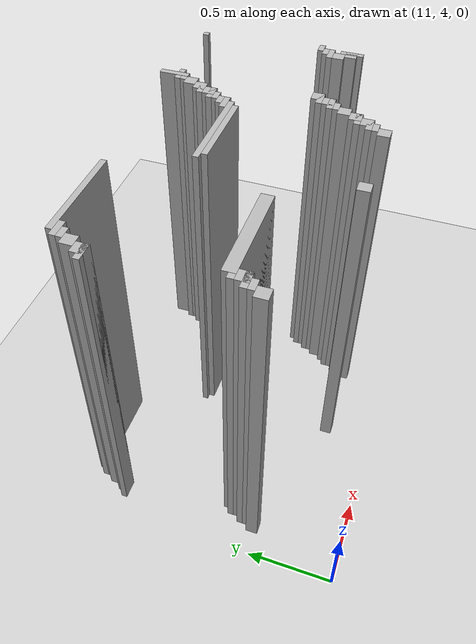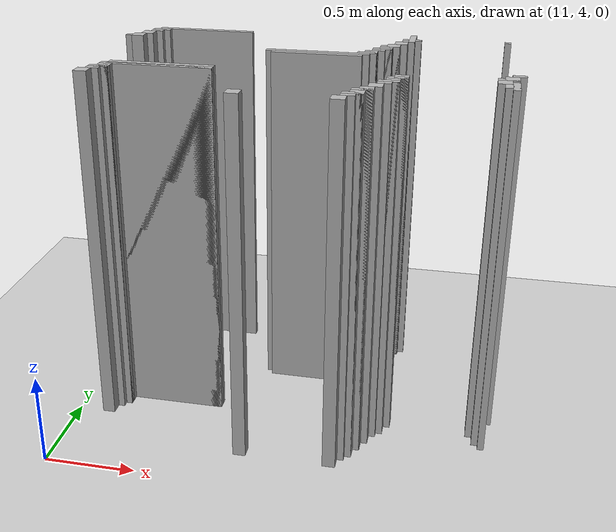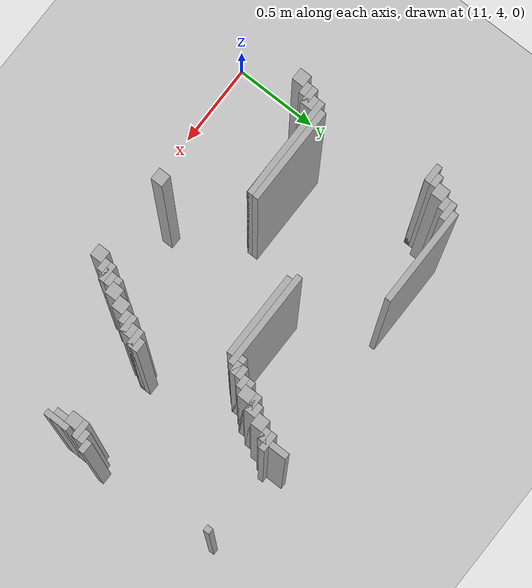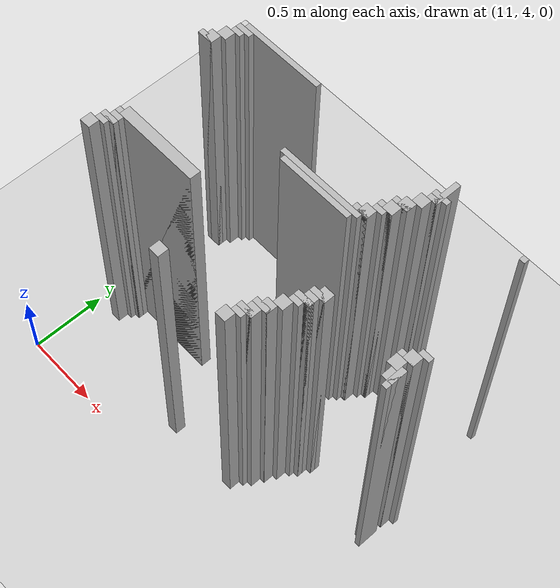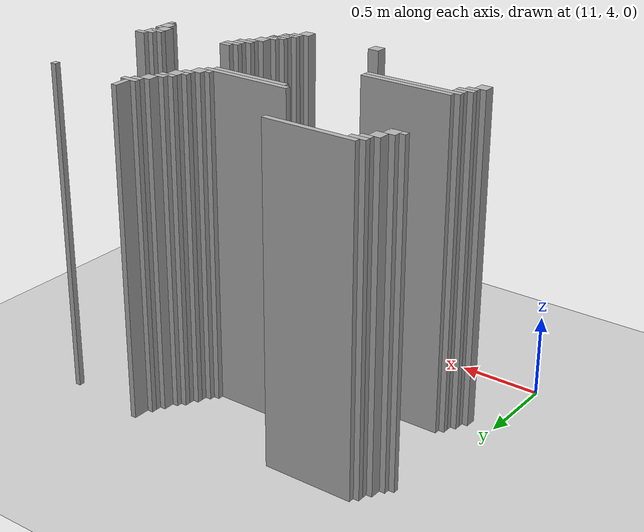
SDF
<sdf version="1.6">
 <world name="slam_world">
  <model name="ground_plane">
   <static>true</static>
   <link name="link">
    <collision name="collision">
     <geometry><plane><normal>0 0 1</normal><size>100 100</size></plane></geometry>
    </collision>
    <visual name="visual">
     <geometry><plane><normal>0 0 1</normal><size>100 100</size></plane></geometry>
     <material>
      <ambient>0.8 0.8 0.8 1</ambient>
      <diffuse>0.8 0.8 0.8 1</diffuse>
      <specular>0.8 0.8 0.8 1</specular>
     </material>
    </visual>
   </link>
  </model>
  <model name="wall_3851">
   <static>true</static>
   <pose>12.720417633410673 5.551044083526682 1.0 0 0 0</pose>
   <link name="link">
    <collision name="collision">
     <geometry><box><size>0.03480278422273782 0.17401392111368907 2.0</size></box></geometry>
    </collision>
    <visual name="visual">
     <geometry><box><size>0.03480278422273782 0.17401392111368907 2.0</size></box></geometry>
     <material><ambient>0.5 0.5 0.5 1</ambient><diffuse>0.7 0.7 0.7 1</diffuse></material>
    </visual>
   </link>
  </model>
  <model name="wall_3876">
   <static>true</static>
   <pose>11.519721577726218 5.551044083526682 1.0 0 0 0</pose>
   <link name="link">
    <collision name="collision">
     <geometry><box><size>0.5568445475638051 0.03480278422273782 2.0</size></box></geometry>
    </collision>
    <visual name="visual">
     <geometry><box><size>0.5568445475638051 0.03480278422273782 2.0</size></box></geometry>
     <material><ambient>0.5 0.5 0.5 1</ambient><diffuse>0.7 0.7 0.7 1</diffuse></material>
    </visual>
   </link>
  </model>
  <model name="wall_3877">
   <static>true</static>
   <pose>13.24245939675174 5.551044083526682 1.0 0 0 0</pose>
   <link name="link">
    <collision name="collision">
     <geometry><box><size>0.03480278422273782 0.03480278422273782 2.0</size></box></geometry>
    </collision>
    <visual name="visual">
     <geometry><box><size>0.03480278422273782 0.03480278422273782 2.0</size></box></geometry>
     <material><ambient>0.5 0.5 0.5 1</ambient><diffuse>0.7 0.7 0.7 1</diffuse></material>
    </visual>
   </link>
  </model>
  <model name="wall_3890">
   <static>true</static>
   <pose>11.258700696055683 5.516241299303944 1.0 0 0 0</pose>
   <link name="link">
    <collision name="collision">
     <geometry><box><size>0.10440835266821345 0.03480278422273782 2.0</size></box></geometry>
    </collision>
    <visual name="visual">
     <geometry><box><size>0.10440835266821345 0.03480278422273782 2.0</size></box></geometry>
     <material><ambient>0.5 0.5 0.5 1</ambient><diffuse>0.7 0.7 0.7 1</diffuse></material>
    </visual>
   </link>
  </model>
  <model name="wall_3891">
   <static>true</static>
   <pose>12.720417633410673 5.516241299303944 1.0 0 0 0</pose>
   <link name="link">
    <collision name="collision">
     <geometry><box><size>0.10440835266821345 0.03480278422273782 2.0</size></box></geometry>
    </collision>
    <visual name="visual">
     <geometry><box><size>0.10440835266821345 0.03480278422273782 2.0</size></box></geometry>
     <material><ambient>0.5 0.5 0.5 1</ambient><diffuse>0.7 0.7 0.7 1</diffuse></material>
    </visual>
   </link>
  </model>
  <model name="wall_3903">
   <static>true</static>
   <pose>11.241299303944315 5.481438515081206 1.0 0 0 0</pose>
   <link name="link">
    <collision name="collision">
     <geometry><box><size>0.06960556844547564 0.03480278422273782 2.0</size></box></geometry>
    </collision>
    <visual name="visual">
     <geometry><box><size>0.06960556844547564 0.03480278422273782 2.0</size></box></geometry>
     <material><ambient>0.5 0.5 0.5 1</ambient><diffuse>0.7 0.7 0.7 1</diffuse></material>
    </visual>
   </link>
  </model>
  <model name="wall_3904">
   <static>true</static>
   <pose>12.703016241299304 5.481438515081206 1.0 0 0 0</pose>
   <link name="link">
    <collision name="collision">
     <geometry><box><size>0.06960556844547564 0.03480278422273782 2.0</size></box></geometry>
    </collision>
    <visual name="visual">
     <geometry><box><size>0.06960556844547564 0.03480278422273782 2.0</size></box></geometry>
     <material><ambient>0.5 0.5 0.5 1</ambient><diffuse>0.7 0.7 0.7 1</diffuse></material>
    </visual>
   </link>
  </model>
  <model name="wall_3916">
   <static>true</static>
   <pose>11.206496519721577 5.4292343387471 1.0 0 0 0</pose>
   <link name="link">
    <collision name="collision">
     <geometry><box><size>0.06960556844547564 0.06960556844547564 2.0</size></box></geometry>
    </collision>
    <visual name="visual">
     <geometry><box><size>0.06960556844547564 0.06960556844547564 2.0</size></box></geometry>
     <material><ambient>0.5 0.5 0.5 1</ambient><diffuse>0.7 0.7 0.7 1</diffuse></material>
    </visual>
   </link>
  </model>
  <model name="wall_3917">
   <static>true</static>
   <pose>12.668213457076565 5.4292343387471 1.0 0 0 0</pose>
   <link name="link">
    <collision name="collision">
     <geometry><box><size>0.06960556844547564 0.06960556844547564 2.0</size></box></geometry>
    </collision>
    <visual name="visual">
     <geometry><box><size>0.06960556844547564 0.06960556844547564 2.0</size></box></geometry>
     <material><ambient>0.5 0.5 0.5 1</ambient><diffuse>0.7 0.7 0.7 1</diffuse></material>
    </visual>
   </link>
  </model>
  <model name="wall_3929">
   <static>true</static>
   <pose>11.17169373549884 5.359628770301624 1.0 0 0 0</pose>
   <link name="link">
    <collision name="collision">
     <geometry><box><size>0.06960556844547564 0.06960556844547564 2.0</size></box></geometry>
    </collision>
    <visual name="visual">
     <geometry><box><size>0.06960556844547564 0.06960556844547564 2.0</size></box></geometry>
     <material><ambient>0.5 0.5 0.5 1</ambient><diffuse>0.7 0.7 0.7 1</diffuse></material>
    </visual>
   </link>
  </model>
  <model name="wall_3930">
   <static>true</static>
   <pose>12.633410672853827 5.359628770301624 1.0 0 0 0</pose>
   <link name="link">
    <collision name="collision">
     <geometry><box><size>0.06960556844547564 0.06960556844547564 2.0</size></box></geometry>
    </collision>
    <visual name="visual">
     <geometry><box><size>0.06960556844547564 0.06960556844547564 2.0</size></box></geometry>
     <material><ambient>0.5 0.5 0.5 1</ambient><diffuse>0.7 0.7 0.7 1</diffuse></material>
    </visual>
   </link>
  </model>
  <model name="wall_3942">
   <static>true</static>
   <pose>11.154292343387471 5.342227378190255 1.0 0 0 0</pose>
   <link name="link">
    <collision name="collision">
     <geometry><box><size>0.10440835266821345 0.03480278422273782 2.0</size></box></geometry>
    </collision>
    <visual name="visual">
     <geometry><box><size>0.10440835266821345 0.03480278422273782 2.0</size></box></geometry>
     <material><ambient>0.5 0.5 0.5 1</ambient><diffuse>0.7 0.7 0.7 1</diffuse></material>
    </visual>
   </link>
  </model>
  <model name="wall_3943">
   <static>true</static>
   <pose>12.616009280742459 5.342227378190255 1.0 0 0 0</pose>
   <link name="link">
    <collision name="collision">
     <geometry><box><size>0.10440835266821345 0.03480278422273782 2.0</size></box></geometry>
    </collision>
    <visual name="visual">
     <geometry><box><size>0.10440835266821345 0.03480278422273782 2.0</size></box></geometry>
     <material><ambient>0.5 0.5 0.5 1</ambient><diffuse>0.7 0.7 0.7 1</diffuse></material>
    </visual>
   </link>
  </model>
  <model name="wall_3952">
   <static>true</static>
   <pose>12.59860788863109 5.290023201856148 1.0 0 0 0</pose>
   <link name="link">
    <collision name="collision">
     <geometry><box><size>0.06960556844547564 0.06960556844547564 2.0</size></box></geometry>
    </collision>
    <visual name="visual">
     <geometry><box><size>0.06960556844547564 0.06960556844547564 2.0</size></box></geometry>
     <material><ambient>0.5 0.5 0.5 1</ambient><diffuse>0.7 0.7 0.7 1</diffuse></material>
    </visual>
   </link>
  </model>
  <model name="wall_3964">
   <static>true</static>
   <pose>12.581206496519721 5.27262180974478 1.0 0 0 0</pose>
   <link name="link">
    <collision name="collision">
     <geometry><box><size>0.10440835266821345 0.03480278422273782 2.0</size></box></geometry>
    </collision>
    <visual name="visual">
     <geometry><box><size>0.10440835266821345 0.03480278422273782 2.0</size></box></geometry>
     <material><ambient>0.5 0.5 0.5 1</ambient><diffuse>0.7 0.7 0.7 1</diffuse></material>
    </visual>
   </link>
  </model>
  <model name="wall_3972">
   <static>true</static>
   <pose>12.563805104408353 5.237819025522041 1.0 0 0 0</pose>
   <link name="link">
    <collision name="collision">
     <geometry><box><size>0.06960556844547564 0.03480278422273782 2.0</size></box></geometry>
    </collision>
    <visual name="visual">
     <geometry><box><size>0.06960556844547564 0.03480278422273782 2.0</size></box></geometry>
     <material><ambient>0.5 0.5 0.5 1</ambient><diffuse>0.7 0.7 0.7 1</diffuse></material>
    </visual>
   </link>
  </model>
  <model name="wall_3984">
   <static>true</static>
   <pose>12.529002320185615 5.185614849187935 1.0 0 0 0</pose>
   <link name="link">
    <collision name="collision">
     <geometry><box><size>0.06960556844547564 0.06960556844547564 2.0</size></box></geometry>
    </collision>
    <visual name="visual">
     <geometry><box><size>0.06960556844547564 0.06960556844547564 2.0</size></box></geometry>
     <material><ambient>0.5 0.5 0.5 1</ambient><diffuse>0.7 0.7 0.7 1</diffuse></material>
    </visual>
   </link>
  </model>
  <model name="wall_3997">
   <static>true</static>
   <pose>12.511600928074245 5.168213457076566 1.0 0 0 0</pose>
   <link name="link">
    <collision name="collision">
     <geometry><box><size>0.10440835266821345 0.03480278422273782 2.0</size></box></geometry>
    </collision>
    <visual name="visual">
     <geometry><box><size>0.10440835266821345 0.03480278422273782 2.0</size></box></geometry>
     <material><ambient>0.5 0.5 0.5 1</ambient><diffuse>0.7 0.7 0.7 1</diffuse></material>
    </visual>
   </link>
  </model>
  <model name="wall_4008">
   <static>true</static>
   <pose>12.250580046403712 5.133410672853828 1.0 0 0 0</pose>
   <link name="link">
    <collision name="collision">
     <geometry><box><size>0.5568445475638051 0.03480278422273782 2.0</size></box></geometry>
    </collision>
    <visual name="visual">
     <geometry><box><size>0.5568445475638051 0.03480278422273782 2.0</size></box></geometry>
     <material><ambient>0.5 0.5 0.5 1</ambient><diffuse>0.7 0.7 0.7 1</diffuse></material>
    </visual>
   </link>
  </model>
  <model name="wall_4019">
   <static>true</static>
   <pose>12.250580046403712 5.09860788863109 1.0 0 0 0</pose>
   <link name="link">
    <collision name="collision">
     <geometry><box><size>0.4872389791183295 0.03480278422273782 2.0</size></box></geometry>
    </collision>
    <visual name="visual">
     <geometry><box><size>0.4872389791183295 0.03480278422273782 2.0</size></box></geometry>
     <material><ambient>0.5 0.5 0.5 1</ambient><diffuse>0.7 0.7 0.7 1</diffuse></material>
    </visual>
   </link>
  </model>
  <model name="wall_4116">
   <static>true</static>
   <pose>13.294663573085847 4.820185614849188 1.0 0 0 0</pose>
   <link name="link">
    <collision name="collision">
     <geometry><box><size>0.06960556844547564 0.03480278422273782 2.0</size></box></geometry>
    </collision>
    <visual name="visual">
     <geometry><box><size>0.06960556844547564 0.03480278422273782 2.0</size></box></geometry>
     <material><ambient>0.5 0.5 0.5 1</ambient><diffuse>0.7 0.7 0.7 1</diffuse></material>
    </visual>
   </link>
  </model>
  <model name="wall_4131">
   <static>true</static>
   <pose>13.259860788863108 4.767981438515081 1.0 0 0 0</pose>
   <link name="link">
    <collision name="collision">
     <geometry><box><size>0.06960556844547564 0.06960556844547564 2.0</size></box></geometry>
    </collision>
    <visual name="visual">
     <geometry><box><size>0.06960556844547564 0.06960556844547564 2.0</size></box></geometry>
     <material><ambient>0.5 0.5 0.5 1</ambient><diffuse>0.7 0.7 0.7 1</diffuse></material>
    </visual>
   </link>
  </model>
  <model name="wall_4145">
   <static>true</static>
   <pose>13.24245939675174 4.750580046403712 1.0 0 0 0</pose>
   <link name="link">
    <collision name="collision">
     <geometry><box><size>0.10440835266821345 0.03480278422273782 2.0</size></box></geometry>
    </collision>
    <visual name="visual">
     <geometry><box><size>0.10440835266821345 0.03480278422273782 2.0</size></box></geometry>
     <material><ambient>0.5 0.5 0.5 1</ambient><diffuse>0.7 0.7 0.7 1</diffuse></material>
    </visual>
   </link>
  </model>
  <model name="wall_4155">
   <static>true</static>
   <pose>11.519721577726218 4.698375870069605 1.0 0 0 0</pose>
   <link name="link">
    <collision name="collision">
     <geometry><box><size>0.5568445475638051 0.06960556844547564 2.0</size></box></geometry>
    </collision>
    <visual name="visual">
     <geometry><box><size>0.5568445475638051 0.06960556844547564 2.0</size></box></geometry>
     <material><ambient>0.5 0.5 0.5 1</ambient><diffuse>0.7 0.7 0.7 1</diffuse></material>
    </visual>
   </link>
  </model>
  <model name="wall_4156">
   <static>true</static>
   <pose>12.737819025522041 4.698375870069605 1.0 0 0 0</pose>
   <link name="link">
    <collision name="collision">
     <geometry><box><size>0.06960556844547564 0.06960556844547564 2.0</size></box></geometry>
    </collision>
    <visual name="visual">
     <geometry><box><size>0.06960556844547564 0.06960556844547564 2.0</size></box></geometry>
     <material><ambient>0.5 0.5 0.5 1</ambient><diffuse>0.7 0.7 0.7 1</diffuse></material>
    </visual>
   </link>
  </model>
  <model name="wall_4157">
   <static>true</static>
   <pose>13.22505800464037 4.698375870069605 1.0 0 0 0</pose>
   <link name="link">
    <collision name="collision">
     <geometry><box><size>0.06960556844547564 0.06960556844547564 2.0</size></box></geometry>
    </collision>
    <visual name="visual">
     <geometry><box><size>0.06960556844547564 0.06960556844547564 2.0</size></box></geometry>
     <material><ambient>0.5 0.5 0.5 1</ambient><diffuse>0.7 0.7 0.7 1</diffuse></material>
    </visual>
   </link>
  </model>
  <model name="wall_4169">
   <static>true</static>
   <pose>11.502320185614849 4.6809744779582365 1.0 0 0 0</pose>
   <link name="link">
    <collision name="collision">
     <geometry><box><size>0.5916473317865429 0.03480278422273782 2.0</size></box></geometry>
    </collision>
    <visual name="visual">
     <geometry><box><size>0.5916473317865429 0.03480278422273782 2.0</size></box></geometry>
     <material><ambient>0.5 0.5 0.5 1</ambient><diffuse>0.7 0.7 0.7 1</diffuse></material>
    </visual>
   </link>
  </model>
  <model name="wall_4170">
   <static>true</static>
   <pose>12.720417633410673 4.6809744779582365 1.0 0 0 0</pose>
   <link name="link">
    <collision name="collision">
     <geometry><box><size>0.10440835266821345 0.03480278422273782 2.0</size></box></geometry>
    </collision>
    <visual name="visual">
     <geometry><box><size>0.10440835266821345 0.03480278422273782 2.0</size></box></geometry>
     <material><ambient>0.5 0.5 0.5 1</ambient><diffuse>0.7 0.7 0.7 1</diffuse></material>
    </visual>
   </link>
  </model>
  <model name="wall_4171">
   <static>true</static>
   <pose>13.277262180974477 4.6287703016241295 1.0 0 0 0</pose>
   <link name="link">
    <collision name="collision">
     <geometry><box><size>0.03480278422273782 0.13921113689095127 2.0</size></box></geometry>
    </collision>
    <visual name="visual">
     <geometry><box><size>0.03480278422273782 0.13921113689095127 2.0</size></box></geometry>
     <material><ambient>0.5 0.5 0.5 1</ambient><diffuse>0.7 0.7 0.7 1</diffuse></material>
    </visual>
   </link>
  </model>
  <model name="wall_4184">
   <static>true</static>
   <pose>11.241299303944315 4.6287703016241295 1.0 0 0 0</pose>
   <link name="link">
    <collision name="collision">
     <geometry><box><size>0.06960556844547564 0.06960556844547564 2.0</size></box></geometry>
    </collision>
    <visual name="visual">
     <geometry><box><size>0.06960556844547564 0.06960556844547564 2.0</size></box></geometry>
     <material><ambient>0.5 0.5 0.5 1</ambient><diffuse>0.7 0.7 0.7 1</diffuse></material>
    </visual>
   </link>
  </model>
  <model name="wall_4185">
   <static>true</static>
   <pose>12.703016241299304 4.6287703016241295 1.0 0 0 0</pose>
   <link name="link">
    <collision name="collision">
     <geometry><box><size>0.06960556844547564 0.06960556844547564 2.0</size></box></geometry>
    </collision>
    <visual name="visual">
     <geometry><box><size>0.06960556844547564 0.06960556844547564 2.0</size></box></geometry>
     <material><ambient>0.5 0.5 0.5 1</ambient><diffuse>0.7 0.7 0.7 1</diffuse></material>
    </visual>
   </link>
  </model>
  <model name="wall_4186">
   <static>true</static>
   <pose>13.259860788863108 4.6287703016241295 1.0 0 0 0</pose>
   <link name="link">
    <collision name="collision">
     <geometry><box><size>0.06960556844547564 0.06960556844547564 2.0</size></box></geometry>
    </collision>
    <visual name="visual">
     <geometry><box><size>0.06960556844547564 0.06960556844547564 2.0</size></box></geometry>
     <material><ambient>0.5 0.5 0.5 1</ambient><diffuse>0.7 0.7 0.7 1</diffuse></material>
    </visual>
   </link>
  </model>
  <model name="wall_4199">
   <static>true</static>
   <pose>11.223897911832946 4.611368909512761 1.0 0 0 0</pose>
   <link name="link">
    <collision name="collision">
     <geometry><box><size>0.10440835266821345 0.03480278422273782 2.0</size></box></geometry>
    </collision>
    <visual name="visual">
     <geometry><box><size>0.10440835266821345 0.03480278422273782 2.0</size></box></geometry>
     <material><ambient>0.5 0.5 0.5 1</ambient><diffuse>0.7 0.7 0.7 1</diffuse></material>
    </visual>
   </link>
  </model>
  <model name="wall_4200">
   <static>true</static>
   <pose>12.685614849187935 4.611368909512761 1.0 0 0 0</pose>
   <link name="link">
    <collision name="collision">
     <geometry><box><size>0.10440835266821345 0.03480278422273782 2.0</size></box></geometry>
    </collision>
    <visual name="visual">
     <geometry><box><size>0.10440835266821345 0.03480278422273782 2.0</size></box></geometry>
     <material><ambient>0.5 0.5 0.5 1</ambient><diffuse>0.7 0.7 0.7 1</diffuse></material>
    </visual>
   </link>
  </model>
  <model name="wall_4208">
   <static>true</static>
   <pose>11.206496519721577 4.576566125290023 1.0 0 0 0</pose>
   <link name="link">
    <collision name="collision">
     <geometry><box><size>0.06960556844547564 0.03480278422273782 2.0</size></box></geometry>
    </collision>
    <visual name="visual">
     <geometry><box><size>0.06960556844547564 0.03480278422273782 2.0</size></box></geometry>
     <material><ambient>0.5 0.5 0.5 1</ambient><diffuse>0.7 0.7 0.7 1</diffuse></material>
    </visual>
   </link>
  </model>
  <model name="wall_4209">
   <static>true</static>
   <pose>12.668213457076565 4.576566125290023 1.0 0 0 0</pose>
   <link name="link">
    <collision name="collision">
     <geometry><box><size>0.06960556844547564 0.03480278422273782 2.0</size></box></geometry>
    </collision>
    <visual name="visual">
     <geometry><box><size>0.06960556844547564 0.03480278422273782 2.0</size></box></geometry>
     <material><ambient>0.5 0.5 0.5 1</ambient><diffuse>0.7 0.7 0.7 1</diffuse></material>
    </visual>
   </link>
  </model>
  <model name="wall_4221">
   <static>true</static>
   <pose>11.17169373549884 4.524361948955916 1.0 0 0 0</pose>
   <link name="link">
    <collision name="collision">
     <geometry><box><size>0.06960556844547564 0.06960556844547564 2.0</size></box></geometry>
    </collision>
    <visual name="visual">
     <geometry><box><size>0.06960556844547564 0.06960556844547564 2.0</size></box></geometry>
     <material><ambient>0.5 0.5 0.5 1</ambient><diffuse>0.7 0.7 0.7 1</diffuse></material>
    </visual>
   </link>
  </model>
  <model name="wall_4222">
   <static>true</static>
   <pose>12.633410672853827 4.524361948955916 1.0 0 0 0</pose>
   <link name="link">
    <collision name="collision">
     <geometry><box><size>0.06960556844547564 0.06960556844547564 2.0</size></box></geometry>
    </collision>
    <visual name="visual">
     <geometry><box><size>0.06960556844547564 0.06960556844547564 2.0</size></box></geometry>
     <material><ambient>0.5 0.5 0.5 1</ambient><diffuse>0.7 0.7 0.7 1</diffuse></material>
    </visual>
   </link>
  </model>
  <model name="wall_4237">
   <static>true</static>
   <pose>12.59860788863109 4.454756380510441 1.0 0 0 0</pose>
   <link name="link">
    <collision name="collision">
     <geometry><box><size>0.06960556844547564 0.06960556844547564 2.0</size></box></geometry>
    </collision>
    <visual name="visual">
     <geometry><box><size>0.06960556844547564 0.06960556844547564 2.0</size></box></geometry>
     <material><ambient>0.5 0.5 0.5 1</ambient><diffuse>0.7 0.7 0.7 1</diffuse></material>
    </visual>
   </link>
  </model>
  <model name="wall_4252">
   <static>true</static>
   <pose>12.581206496519721 4.437354988399072 1.0 0 0 0</pose>
   <link name="link">
    <collision name="collision">
     <geometry><box><size>0.10440835266821345 0.03480278422273782 2.0</size></box></geometry>
    </collision>
    <visual name="visual">
     <geometry><box><size>0.10440835266821345 0.03480278422273782 2.0</size></box></geometry>
     <material><ambient>0.5 0.5 0.5 1</ambient><diffuse>0.7 0.7 0.7 1</diffuse></material>
    </visual>
   </link>
  </model>
  <model name="wall_4260">
   <static>true</static>
   <pose>12.563805104408353 4.385150812064965 1.0 0 0 0</pose>
   <link name="link">
    <collision name="collision">
     <geometry><box><size>0.06960556844547564 0.06960556844547564 2.0</size></box></geometry>
    </collision>
    <visual name="visual">
     <geometry><box><size>0.06960556844547564 0.06960556844547564 2.0</size></box></geometry>
     <material><ambient>0.5 0.5 0.5 1</ambient><diffuse>0.7 0.7 0.7 1</diffuse></material>
    </visual>
   </link>
  </model>
  <model name="wall_4273">
   <static>true</static>
   <pose>12.546403712296984 4.367749419953596 1.0 0 0 0</pose>
   <link name="link">
    <collision name="collision">
     <geometry><box><size>0.10440835266821345 0.03480278422273782 2.0</size></box></geometry>
    </collision>
    <visual name="visual">
     <geometry><box><size>0.10440835266821345 0.03480278422273782 2.0</size></box></geometry>
     <material><ambient>0.5 0.5 0.5 1</ambient><diffuse>0.7 0.7 0.7 1</diffuse></material>
    </visual>
   </link>
  </model>
  <model name="wall_4281">
   <static>true</static>
   <pose>12.529002320185615 4.332946635730858 1.0 0 0 0</pose>
   <link name="link">
    <collision name="collision">
     <geometry><box><size>0.06960556844547564 0.03480278422273782 2.0</size></box></geometry>
    </collision>
    <visual name="visual">
     <geometry><box><size>0.06960556844547564 0.03480278422273782 2.0</size></box></geometry>
     <material><ambient>0.5 0.5 0.5 1</ambient><diffuse>0.7 0.7 0.7 1</diffuse></material>
    </visual>
   </link>
  </model>
  <model name="wall_4294">
   <static>true</static>
   <pose>12.006960556844547 4.280742459396752 1.0 0 0 0</pose>
   <link name="link">
    <collision name="collision">
     <geometry><box><size>0.06960556844547564 0.06960556844547564 2.0</size></box></geometry>
    </collision>
    <visual name="visual">
     <geometry><box><size>0.06960556844547564 0.06960556844547564 2.0</size></box></geometry>
     <material><ambient>0.5 0.5 0.5 1</ambient><diffuse>0.7 0.7 0.7 1</diffuse></material>
    </visual>
   </link>
  </model>
  <model name="wall_4295">
   <static>true</static>
   <pose>12.494199535962876 4.280742459396752 1.0 0 0 0</pose>
   <link name="link">
    <collision name="collision">
     <geometry><box><size>0.06960556844547564 0.06960556844547564 2.0</size></box></geometry>
    </collision>
    <visual name="visual">
     <geometry><box><size>0.06960556844547564 0.06960556844547564 2.0</size></box></geometry>
     <material><ambient>0.5 0.5 0.5 1</ambient><diffuse>0.7 0.7 0.7 1</diffuse></material>
    </visual>
   </link>
  </model>
 </world>
</sdf>
